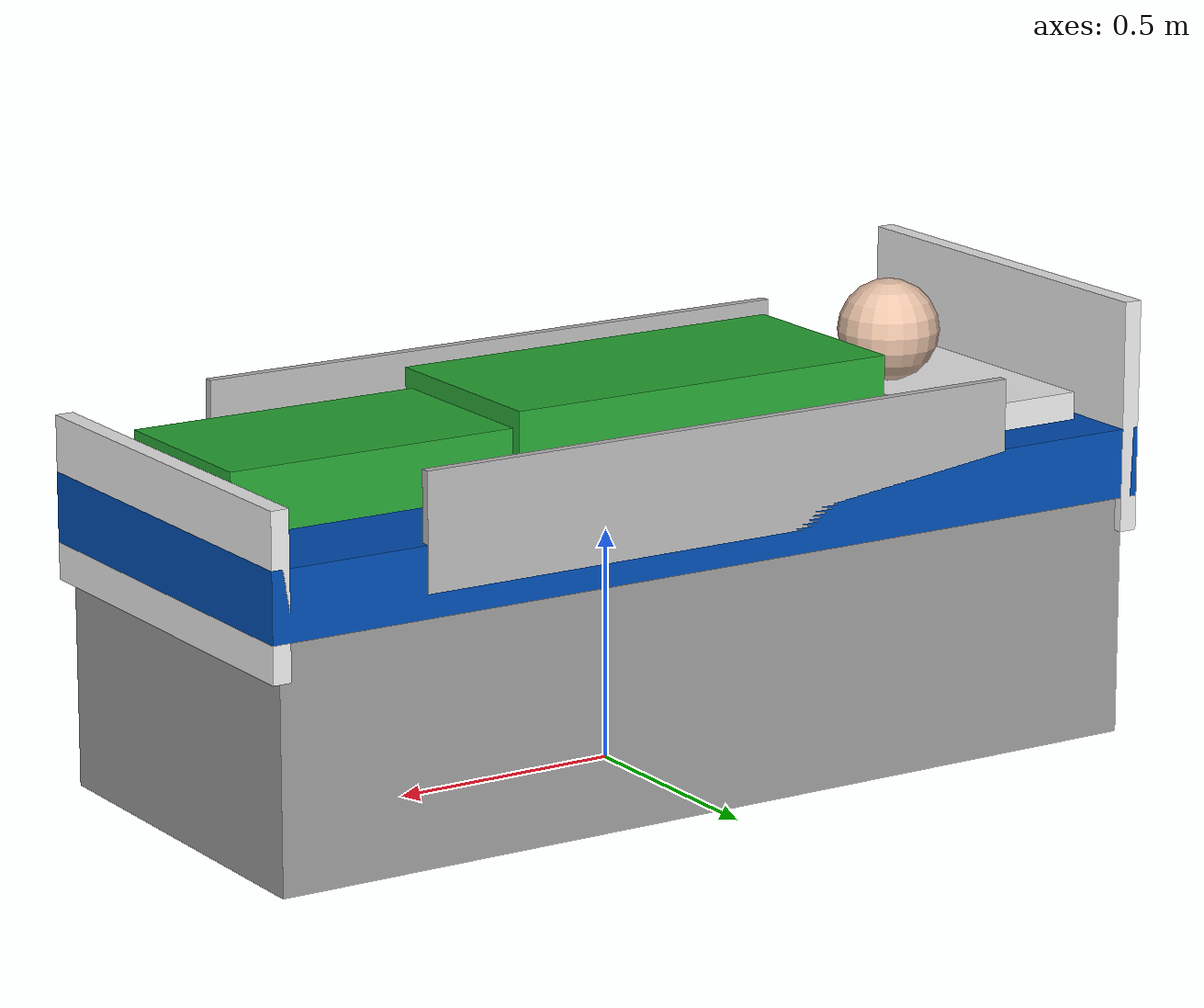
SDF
<?xml version="1.0" ?>
<sdf version="1.6">
  <model name="hospital_bed_with_patient">
    <static>true</static>
    <link name="link">

      <!-- MAIN MATTRESS COLLISION -->
      <collision name="mattress_collision">
        <pose>0 0 0.6 0 0 0</pose>
        <geometry>
          <box>
            <size>2.1 0.9 0.15</size>
          </box>
        </geometry>
      </collision>

      <!-- BASE FRAME COLLISION -->
      <collision name="base_collision">
        <pose>0 0 0.25 0 0 0</pose>
        <geometry>
          <box>
            <size>2.0 0.85 0.5</size>
          </box>
        </geometry>
      </collision>

      <!-- VISUAL: METAL BASE LEGS & FRAME -->
      <visual name="base_frame_visual">
        <pose>0 0 0.26 0 0 0</pose>
        <geometry>
          <box>
            <size>2.05 0.86 0.52</size>
          </box>
        </geometry>
        <material>
          <script>
            <uri>file://media/materials/scripts/gazebo.material</uri>
            <name>Gazebo/Grey</name>
          </script>
        </material>
      </visual>

      <!-- VISUAL: MEDICAL BLUE MATTRESS -->
      <visual name="mattress_visual">
        <pose>0 0 0.6 0 0 0</pose>
        <geometry>
          <box>
            <size>2.1 0.9 0.15</size>
          </box>
        </geometry>
        <material>
          <ambient>0.0 0.2 0.5 1.0</ambient>
          <diffuse>0.0 0.3 0.7 1.0</diffuse>
          <specular>0.1 0.1 0.1 1.0</specular>
        </material>
      </visual>

      <!-- VISUAL: HEADBOARD -->
      <visual name="headboard_visual">
        <pose>-1.03 0 0.7 0 0 0</pose>
        <geometry>
          <box>
            <size>0.04 0.9 0.5</size>
          </box>
        </geometry>
        <material>
          <script>
            <uri>file://media/materials/scripts/gazebo.material</uri>
            <name>Gazebo/White</name>
          </script>
        </material>
      </visual>

      <!-- VISUAL: FOOTBOARD -->
      <visual name="footboard_visual">
        <pose>1.03 0 0.62 0 0 0</pose>
        <geometry>
          <box>
            <size>0.04 0.9 0.35</size>
          </box>
        </geometry>
        <material>
          <script>
            <uri>file://media/materials/scripts/gazebo.material</uri>
            <name>Gazebo/White</name>
          </script>
        </material>
      </visual>

      <!-- VISUAL: SAFETY RAILS -->
      <visual name="left_rail">
        <pose>0 0.44 0.7 0 0 0</pose>
        <geometry>
          <box>
            <size>1.4 0.02 0.25</size>
          </box>
        </geometry>
        <material>
          <script>
            <uri>file://media/materials/scripts/gazebo.material</uri>
            <name>Gazebo/ZincChromate</name>
          </script>
        </material>
      </visual>
      <visual name="right_rail">
        <pose>0 -0.44 0.7 0 0 0</pose>
        <geometry>
          <box>
            <size>1.4 0.02 0.25</size>
          </box>
        </geometry>
        <material>
          <script>
            <uri>file://media/materials/scripts/gazebo.material</uri>
            <name>Gazebo/ZincChromate</name>
          </script>
        </material>
      </visual>

      <!-- ==================== NEW: PILLOW ==================== -->
      <visual name="pillow_visual">
        <pose>-0.8 0 0.7 0 0 0</pose>
        <geometry>
          <box>
            <size>0.35 0.65 0.07</size>
          </box>
        </geometry>
        <material>
          <script>
            <uri>file://media/materials/scripts/gazebo.material</uri>
            <name>Gazebo/White</name>
          </script>
        </material>
      </visual>

      <!-- ==================== NEW: PATIENT MANNEQUIN ==================== -->
      <!-- Patient Torso -->
      <visual name="patient_torso">
        <pose>-0.1 0 0.76 0 0 0</pose>
        <geometry>
          <box>
            <size>0.9 0.45 0.18</size>
          </box>
        </geometry>
        <material>
          <script>
            <uri>file://media/materials/scripts/gazebo.material</uri>
            <name>Gazebo/Green</name> <!-- Patient gown color -->
          </script>
        </material>
      </visual>

      <!-- Patient Head (resting on pillow) -->
      <visual name="patient_head">
        <pose>-0.72 0 0.84 0 0 0</pose>
        <geometry>
          <sphere>
            <radius>0.11</radius>
          </sphere>
        </geometry>
        <material>
          <ambient>0.9 0.75 0.65 1.0</ambient>
          <diffuse>0.9 0.75 0.65 1.0</diffuse>
        </material>
      </visual>

      <!-- Patient Legs -->
      <visual name="patient_legs">
        <pose>0.6 0 0.74 0 0 0</pose>
        <geometry>
          <box>
            <size>0.8 0.4 0.14</size>
          </box>
        </geometry>
        <material>
          <script>
            <uri>file://media/materials/scripts/gazebo.material</uri>
            <name>Gazebo/Green</name>
          </script>
        </material>
      </visual>

    </link>
  </model>
</sdf>
